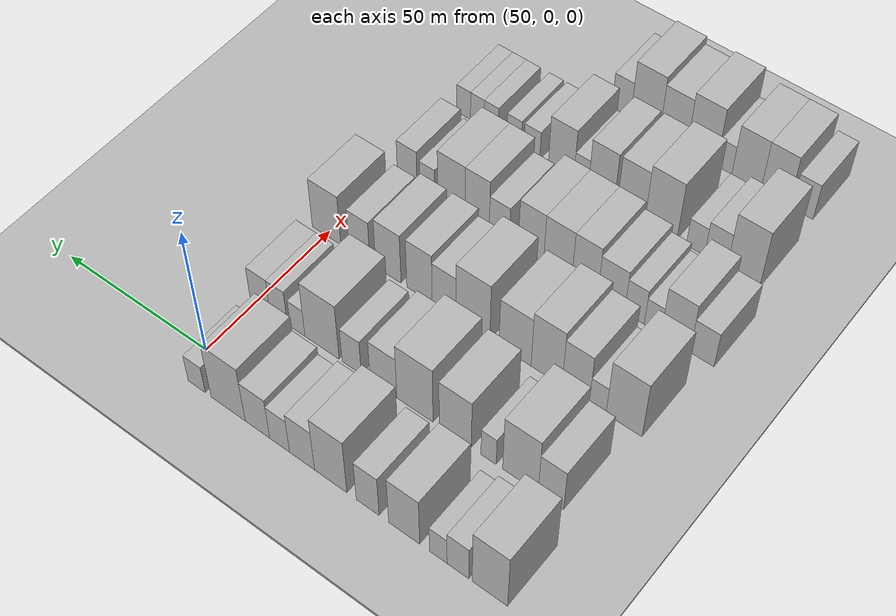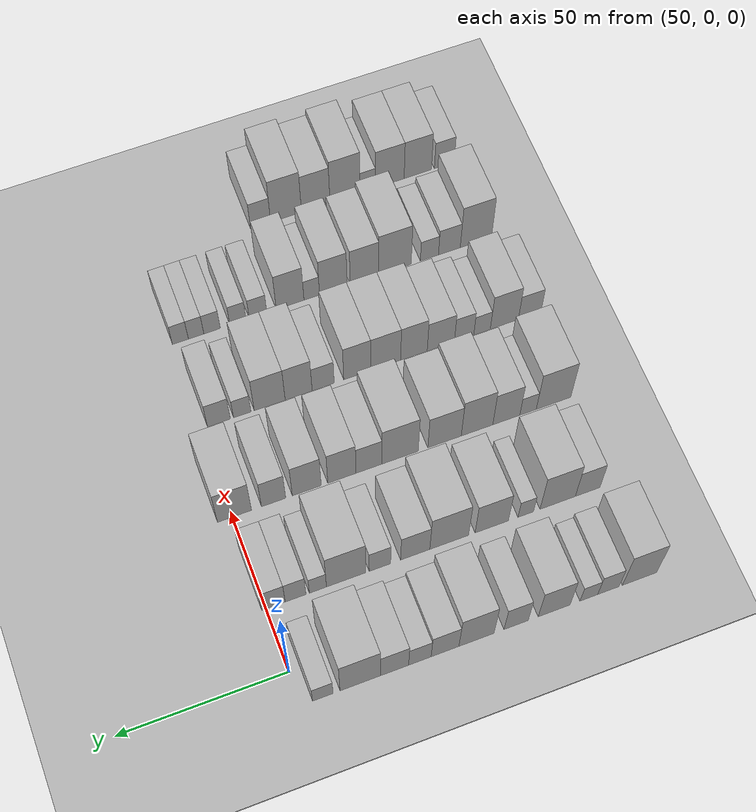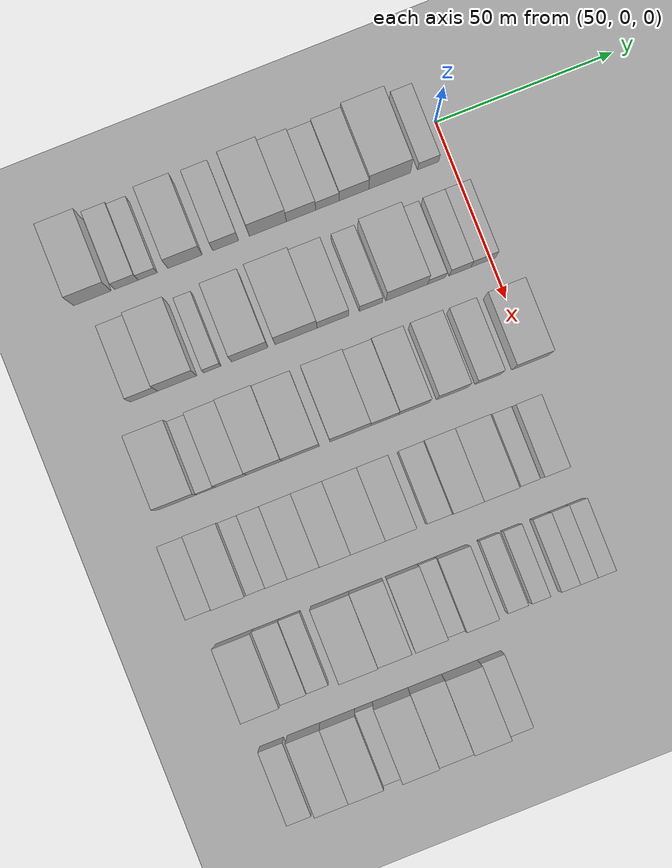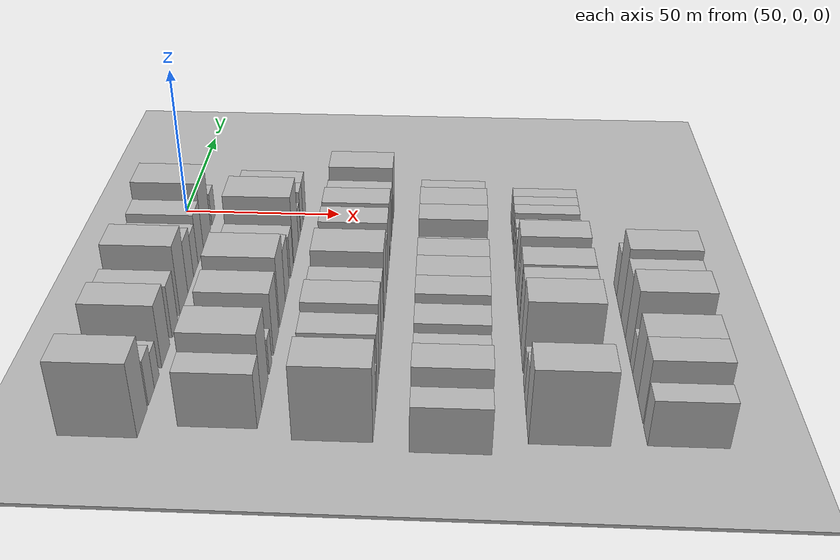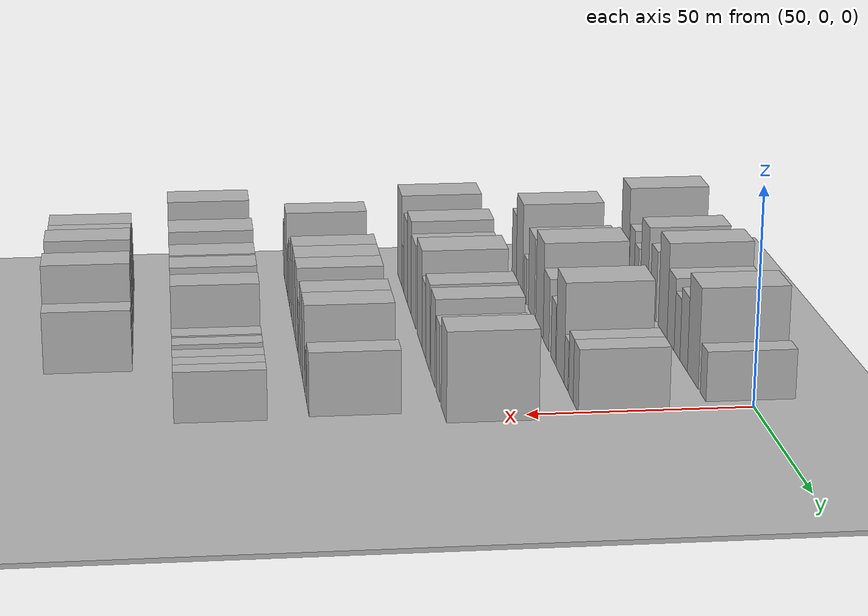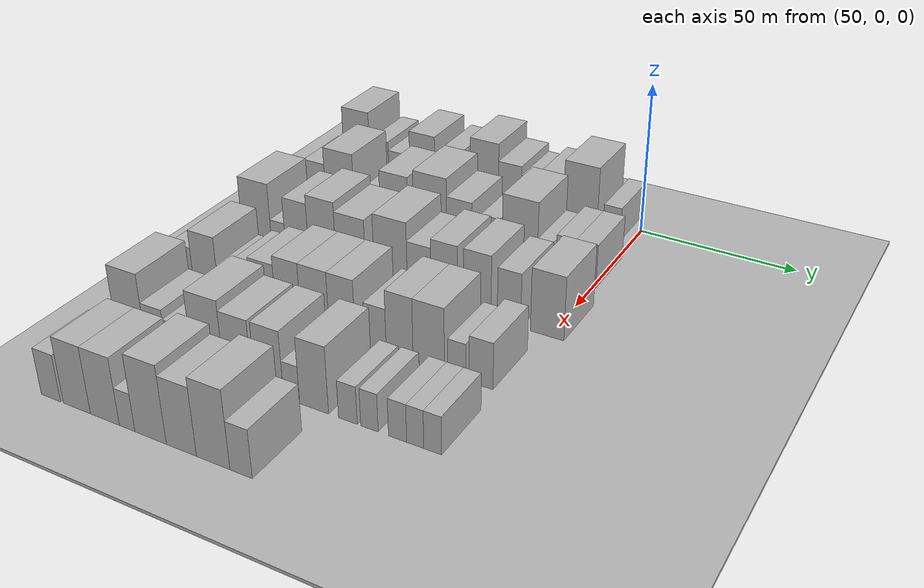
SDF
<sdf version="1.6">
 <world name="default">
  <include><name>ground_plane_1</name><uri>model://HANNAS_ground_plane</uri></include>
  <include>
   <name>ground_plane_2</name>
   <uri>model://HANNAS_ground_plane</uri>
   <pose>100 0 0  0 0 0</pose>
  </include>
  <model name="building_44">
   <static>1</static>
   <pose>50.0000 -100.7540 0 0.000000 0.000000 0.000000</pose>
   <link name="link">
    <pose>0 0 12.00 0 0 0</pose>
    <collision name="collision"><geometry><box><size>20.0000 10.5642 24.0000</size></box></geometry></collision>
    <visual name="visual">
     <cast_shadows>0</cast_shadows>
     <geometry><box><size>20.0000 10.5642 24.0000</size></box></geometry>
     <material>
      <script>
       <uri>model://HANNAS_wall/materials/scripts</uri>
       <uri>model://HANNAS_wall/materials/textures</uri>
       <name>vrc/HANNAS_wall</name>
      </script>
     </material>
    </visual>
   </link>
  </model>
  <model name="building_45">
   <static>1</static>
   <pose>50.0000 -91.1865 0 0.000000 0.000000 0.000000</pose>
   <link name="link">
    <pose>0 0 7.50 0 0 0</pose>
    <collision name="collision"><geometry><box><size>20.0000 6.5709 15.0000</size></box></geometry></collision>
    <visual name="visual">
     <cast_shadows>0</cast_shadows>
     <geometry><box><size>20.0000 6.5709 15.0000</size></box></geometry>
     <material>
      <script>
       <uri>model://HANNAS_wall/materials/scripts</uri>
       <uri>model://HANNAS_wall/materials/textures</uri>
       <name>vrc/HANNAS_wall</name>
      </script>
     </material>
    </visual>
   </link>
  </model>
  <model name="building_46">
   <static>1</static>
   <pose>50.0000 -85.2072 0 0.000000 0.000000 0.000000</pose>
   <link name="link">
    <pose>0 0 6.00 0 0 0</pose>
    <collision name="collision"><geometry><box><size>20.0000 5.3876 12.0000</size></box></geometry></collision>
    <visual name="visual">
     <cast_shadows>0</cast_shadows>
     <geometry><box><size>20.0000 5.3876 12.0000</size></box></geometry>
     <material>
      <script>
       <uri>model://HANNAS_wall/materials/scripts</uri>
       <uri>model://HANNAS_wall/materials/textures</uri>
       <name>vrc/HANNAS_wall</name>
      </script>
     </material>
    </visual>
   </link>
  </model>
  <model name="building_47">
   <static>1</static>
   <pose>50.0000 -74.6740 0 0.000000 0.000000 0.000000</pose>
   <link name="link">
    <pose>0 0 10.50 0 0 0</pose>
    <collision name="collision"><geometry><box><size>20.0000 9.6788 21.0000</size></box></geometry></collision>
    <visual name="visual">
     <cast_shadows>0</cast_shadows>
     <geometry><box><size>20.0000 9.6788 21.0000</size></box></geometry>
     <material>
      <script>
       <uri>model://HANNAS_wall/materials/scripts</uri>
       <uri>model://HANNAS_wall/materials/textures</uri>
       <name>vrc/HANNAS_wall</name>
      </script>
     </material>
    </visual>
   </link>
  </model>
  <model name="building_48">
   <static>1</static>
   <pose>50.0000 -63.1917 0 0.000000 0.000000 0.000000</pose>
   <link name="link">
    <pose>0 0 9.00 0 0 0</pose>
    <collision name="collision"><geometry><box><size>20.0000 7.2860 18.0000</size></box></geometry></collision>
    <visual name="visual">
     <cast_shadows>0</cast_shadows>
     <geometry><box><size>20.0000 7.2860 18.0000</size></box></geometry>
     <material>
      <script>
       <uri>model://HANNAS_wall/materials/scripts</uri>
       <uri>model://HANNAS_wall/materials/textures</uri>
       <name>vrc/HANNAS_wall</name>
      </script>
     </material>
    </visual>
   </link>
  </model>
  <model name="building_49">
   <static>1</static>
   <pose>50.0000 -51.3033 0 0.000000 0.000000 0.000000</pose>
   <link name="link">
    <pose>0 0 12.00 0 0 0</pose>
    <collision name="collision"><geometry><box><size>20.0000 10.4907 24.0000</size></box></geometry></collision>
    <visual name="visual">
     <cast_shadows>0</cast_shadows>
     <geometry><box><size>20.0000 10.4907 24.0000</size></box></geometry>
     <material>
      <script>
       <uri>model://HANNAS_wall/materials/scripts</uri>
       <uri>model://HANNAS_wall/materials/textures</uri>
       <name>vrc/HANNAS_wall</name>
      </script>
     </material>
    </visual>
   </link>
  </model>
  <model name="building_50">
   <static>1</static>
   <pose>50.0000 -41.9349 0 0.000000 0.000000 0.000000</pose>
   <link name="link">
    <pose>0 0 9.00 0 0 0</pose>
    <collision name="collision"><geometry><box><size>20.0000 8.2460 18.0000</size></box></geometry></collision>
    <visual name="visual">
     <cast_shadows>0</cast_shadows>
     <geometry><box><size>20.0000 8.2460 18.0000</size></box></geometry>
     <material>
      <script>
       <uri>model://HANNAS_wall/materials/scripts</uri>
       <uri>model://HANNAS_wall/materials/textures</uri>
       <name>vrc/HANNAS_wall</name>
      </script>
     </material>
    </visual>
   </link>
  </model>
  <model name="building_51">
   <static>1</static>
   <pose>50.0000 -34.5024 0 0.000000 0.000000 0.000000</pose>
   <link name="link">
    <pose>0 0 7.50 0 0 0</pose>
    <collision name="collision"><geometry><box><size>20.0000 6.6191 15.0000</size></box></geometry></collision>
    <visual name="visual">
     <cast_shadows>0</cast_shadows>
     <geometry><box><size>20.0000 6.6191 15.0000</size></box></geometry>
     <material>
      <script>
       <uri>model://HANNAS_wall/materials/scripts</uri>
       <uri>model://HANNAS_wall/materials/textures</uri>
       <name>vrc/HANNAS_wall</name>
      </script>
     </material>
    </visual>
   </link>
  </model>
  <model name="building_52">
   <static>1</static>
   <pose>50.0000 -27.0388 0 0.000000 0.000000 0.000000</pose>
   <link name="link">
    <pose>0 0 9.00 0 0 0</pose>
    <collision name="collision"><geometry><box><size>20.0000 8.3081 18.0000</size></box></geometry></collision>
    <visual name="visual">
     <cast_shadows>0</cast_shadows>
     <geometry><box><size>20.0000 8.3081 18.0000</size></box></geometry>
     <material>
      <script>
       <uri>model://HANNAS_wall/materials/scripts</uri>
       <uri>model://HANNAS_wall/materials/textures</uri>
       <name>vrc/HANNAS_wall</name>
      </script>
     </material>
    </visual>
   </link>
  </model>
  <model name="building_53">
   <static>1</static>
   <pose>50.0000 -16.9919 0 0.000000 0.000000 0.000000</pose>
   <link name="link">
    <pose>0 0 12.00 0 0 0</pose>
    <collision name="collision"><geometry><box><size>20.0000 11.7858 24.0000</size></box></geometry></collision>
    <visual name="visual">
     <cast_shadows>0</cast_shadows>
     <geometry><box><size>20.0000 11.7858 24.0000</size></box></geometry>
     <material>
      <script>
       <uri>model://HANNAS_wall/materials/scripts</uri>
       <uri>model://HANNAS_wall/materials/textures</uri>
       <name>vrc/HANNAS_wall</name>
      </script>
     </material>
    </visual>
   </link>
  </model>
  <model name="building_54">
   <static>1</static>
   <pose>50.0000 -6.1153 0 0.000000 0.000000 0.000000</pose>
   <link name="link">
    <pose>0 0 6.00 0 0 0</pose>
    <collision name="collision"><geometry><box><size>20.0000 5.9674 12.0000</size></box></geometry></collision>
    <visual name="visual">
     <cast_shadows>0</cast_shadows>
     <geometry><box><size>20.0000 5.9674 12.0000</size></box></geometry>
     <material>
      <script>
       <uri>model://HANNAS_wall/materials/scripts</uri>
       <uri>model://HANNAS_wall/materials/textures</uri>
       <name>vrc/HANNAS_wall</name>
      </script>
     </material>
    </visual>
   </link>
  </model>
  <model name="building_152">
   <static>1</static>
   <pose>79.0000 -97.6126 0 0.000000 0.000000 0.000000</pose>
   <link name="link">
    <pose>0 0 9.00 0 0 0</pose>
    <collision name="collision"><geometry><box><size>20.0000 7.7142 18.0000</size></box></geometry></collision>
    <visual name="visual">
     <cast_shadows>0</cast_shadows>
     <geometry><box><size>20.0000 7.7142 18.0000</size></box></geometry>
     <material>
      <script>
       <uri>model://HANNAS_wall/materials/scripts</uri>
       <uri>model://HANNAS_wall/materials/textures</uri>
       <name>vrc/HANNAS_wall</name>
      </script>
     </material>
    </visual>
   </link>
  </model>
  <model name="building_153">
   <static>1</static>
   <pose>79.0000 -88.2612 0 0.000000 0.000000 0.000000</pose>
   <link name="link">
    <pose>0 0 12.00 0 0 0</pose>
    <collision name="collision"><geometry><box><size>20.0000 10.9885 24.0000</size></box></geometry></collision>
    <visual name="visual">
     <cast_shadows>0</cast_shadows>
     <geometry><box><size>20.0000 10.9885 24.0000</size></box></geometry>
     <material>
      <script>
       <uri>model://HANNAS_wall/materials/scripts</uri>
       <uri>model://HANNAS_wall/materials/textures</uri>
       <name>vrc/HANNAS_wall</name>
      </script>
     </material>
    </visual>
   </link>
  </model>
  <model name="building_154">
   <static>1</static>
   <pose>79.0000 -78.3634 0 0.000000 0.000000 0.000000</pose>
   <link name="link">
    <pose>0 0 6.00 0 0 0</pose>
    <collision name="collision"><geometry><box><size>20.0000 4.8071 12.0000</size></box></geometry></collision>
    <visual name="visual">
     <cast_shadows>0</cast_shadows>
     <geometry><box><size>20.0000 4.8071 12.0000</size></box></geometry>
     <material>
      <script>
       <uri>model://HANNAS_wall/materials/scripts</uri>
       <uri>model://HANNAS_wall/materials/textures</uri>
       <name>vrc/HANNAS_wall</name>
      </script>
     </material>
    </visual>
   </link>
  </model>
  <model name="building_155">
   <static>1</static>
   <pose>79.0000 -67.8437 0 0.000000 0.000000 0.000000</pose>
   <link name="link">
    <pose>0 0 10.50 0 0 0</pose>
    <collision name="collision"><geometry><box><size>20.0000 10.2322 21.0000</size></box></geometry></collision>
    <visual name="visual">
     <cast_shadows>0</cast_shadows>
     <geometry><box><size>20.0000 10.2322 21.0000</size></box></geometry>
     <material>
      <script>
       <uri>model://HANNAS_wall/materials/scripts</uri>
       <uri>model://HANNAS_wall/materials/textures</uri>
       <name>vrc/HANNAS_wall</name>
      </script>
     </material>
    </visual>
   </link>
  </model>
  <model name="building_156">
   <static>1</static>
   <pose>79.0000 -54.8177 0 0.000000 0.000000 0.000000</pose>
   <link name="link">
    <pose>0 0 12.00 0 0 0</pose>
    <collision name="collision"><geometry><box><size>20.0000 11.8199 24.0000</size></box></geometry></collision>
    <visual name="visual">
     <cast_shadows>0</cast_shadows>
     <geometry><box><size>20.0000 11.8199 24.0000</size></box></geometry>
     <material>
      <script>
       <uri>model://HANNAS_wall/materials/scripts</uri>
       <uri>model://HANNAS_wall/materials/textures</uri>
       <name>vrc/HANNAS_wall</name>
      </script>
     </material>
    </visual>
   </link>
  </model>
  <model name="building_157">
   <static>1</static>
   <pose>79.0000 -44.4747 0 0.000000 0.000000 0.000000</pose>
   <link name="link">
    <pose>0 0 9.00 0 0 0</pose>
    <collision name="collision"><geometry><box><size>20.0000 8.8660 18.0000</size></box></geometry></collision>
    <visual name="visual">
     <cast_shadows>0</cast_shadows>
     <geometry><box><size>20.0000 8.8660 18.0000</size></box></geometry>
     <material>
      <script>
       <uri>model://HANNAS_wall/materials/scripts</uri>
       <uri>model://HANNAS_wall/materials/textures</uri>
       <name>vrc/HANNAS_wall</name>
      </script>
     </material>
    </visual>
   </link>
  </model>
  <model name="building_158">
   <static>1</static>
   <pose>79.0000 -33.8122 0 0.000000 0.000000 0.000000</pose>
   <link name="link">
    <pose>0 0 7.50 0 0 0</pose>
    <collision name="collision"><geometry><box><size>20.0000 6.4590 15.0000</size></box></geometry></collision>
    <visual name="visual">
     <cast_shadows>0</cast_shadows>
     <geometry><box><size>20.0000 6.4590 15.0000</size></box></geometry>
     <material>
      <script>
       <uri>model://HANNAS_wall/materials/scripts</uri>
       <uri>model://HANNAS_wall/materials/textures</uri>
       <name>vrc/HANNAS_wall</name>
      </script>
     </material>
    </visual>
   </link>
  </model>
  <model name="building_159">
   <static>1</static>
   <pose>79.0000 -23.6908 0 0.000000 0.000000 0.000000</pose>
   <link name="link">
    <pose>0 0 12.00 0 0 0</pose>
    <collision name="collision"><geometry><box><size>20.0000 11.7838 24.0000</size></box></geometry></collision>
    <visual name="visual">
     <cast_shadows>0</cast_shadows>
     <geometry><box><size>20.0000 11.7838 24.0000</size></box></geometry>
     <material>
      <script>
       <uri>model://HANNAS_wall/materials/scripts</uri>
       <uri>model://HANNAS_wall/materials/textures</uri>
       <name>vrc/HANNAS_wall</name>
      </script>
     </material>
    </visual>
   </link>
  </model>
  <model name="building_160">
   <static>1</static>
   <pose>79.0000 -15.2521 0 0.000000 0.000000 0.000000</pose>
   <link name="link">
    <pose>0 0 6.00 0 0 0</pose>
    <collision name="collision"><geometry><box><size>20.0000 5.0935 12.0000</size></box></geometry></collision>
    <visual name="visual">
     <cast_shadows>0</cast_shadows>
     <geometry><box><size>20.0000 5.0935 12.0000</size></box></geometry>
     <material>
      <script>
       <uri>model://HANNAS_wall/materials/scripts</uri>
       <uri>model://HANNAS_wall/materials/textures</uri>
       <name>vrc/HANNAS_wall</name>
      </script>
     </material>
    </visual>
   </link>
  </model>
  <model name="building_161">
   <static>1</static>
   <pose>79.0000 -8.6338 0 0.000000 0.000000 0.000000</pose>
   <link name="link">
    <pose>0 0 7.50 0 0 0</pose>
    <collision name="collision"><geometry><box><size>20.0000 6.1432 15.0000</size></box></geometry></collision>
    <visual name="visual">
     <cast_shadows>0</cast_shadows>
     <geometry><box><size>20.0000 6.1432 15.0000</size></box></geometry>
     <material>
      <script>
       <uri>model://HANNAS_wall/materials/scripts</uri>
       <uri>model://HANNAS_wall/materials/textures</uri>
       <name>vrc/HANNAS_wall</name>
      </script>
     </material>
    </visual>
   </link>
  </model>
  <model name="building_162">
   <static>1</static>
   <pose>79.0000 -2.0818 0 0.000000 0.000000 0.000000</pose>
   <link name="link">
    <pose>0 0 7.50 0 0 0</pose>
    <collision name="collision"><geometry><box><size>20.0000 6.9608 15.0000</size></box></geometry></collision>
    <visual name="visual">
     <cast_shadows>0</cast_shadows>
     <geometry><box><size>20.0000 6.9608 15.0000</size></box></geometry>
     <material>
      <script>
       <uri>model://HANNAS_wall/materials/scripts</uri>
       <uri>model://HANNAS_wall/materials/textures</uri>
       <name>vrc/HANNAS_wall</name>
      </script>
     </material>
    </visual>
   </link>
  </model>
  <model name="building_266">
   <static>1</static>
   <pose>108.0000 -99.4564 0 0.000000 0.000000 0.000000</pose>
   <link name="link">
    <pose>0 0 12.00 0 0 0</pose>
    <collision name="collision"><geometry><box><size>20.0000 11.0423 24.0000</size></box></geometry></collision>
    <visual name="visual">
     <cast_shadows>0</cast_shadows>
     <geometry><box><size>20.0000 11.0423 24.0000</size></box></geometry>
     <material>
      <script>
       <uri>model://HANNAS_wall/materials/scripts</uri>
       <uri>model://HANNAS_wall/materials/textures</uri>
       <name>vrc/HANNAS_wall</name>
      </script>
     </material>
    </visual>
   </link>
  </model>
  <model name="building_267">
   <static>1</static>
   <pose>108.0000 -91.3241 0 0.000000 0.000000 0.000000</pose>
   <link name="link">
    <pose>0 0 6.00 0 0 0</pose>
    <collision name="collision"><geometry><box><size>20.0000 5.2223 12.0000</size></box></geometry></collision>
    <visual name="visual">
     <cast_shadows>0</cast_shadows>
     <geometry><box><size>20.0000 5.2223 12.0000</size></box></geometry>
     <material>
      <script>
       <uri>model://HANNAS_wall/materials/scripts</uri>
       <uri>model://HANNAS_wall/materials/textures</uri>
       <name>vrc/HANNAS_wall</name>
      </script>
     </material>
    </visual>
   </link>
  </model>
  <model name="building_268">
   <static>1</static>
   <pose>108.0000 -84.4315 0 0.000000 0.000000 0.000000</pose>
   <link name="link">
    <pose>0 0 10.50 0 0 0</pose>
    <collision name="collision"><geometry><box><size>20.0000 8.5628 21.0000</size></box></geometry></collision>
    <visual name="visual">
     <cast_shadows>0</cast_shadows>
     <geometry><box><size>20.0000 8.5628 21.0000</size></box></geometry>
     <material>
      <script>
       <uri>model://HANNAS_wall/materials/scripts</uri>
       <uri>model://HANNAS_wall/materials/textures</uri>
       <name>vrc/HANNAS_wall</name>
      </script>
     </material>
    </visual>
   </link>
  </model>
  <model name="building_269">
   <static>1</static>
   <pose>108.0000 -75.1806 0 0.000000 0.000000 0.000000</pose>
   <link name="link">
    <pose>0 0 12.00 0 0 0</pose>
    <collision name="collision"><geometry><box><size>20.0000 9.9392 24.0000</size></box></geometry></collision>
    <visual name="visual">
     <cast_shadows>0</cast_shadows>
     <geometry><box><size>20.0000 9.9392 24.0000</size></box></geometry>
     <material>
      <script>
       <uri>model://HANNAS_wall/materials/scripts</uri>
       <uri>model://HANNAS_wall/materials/textures</uri>
       <name>vrc/HANNAS_wall</name>
      </script>
     </material>
    </visual>
   </link>
  </model>
  <model name="building_270">
   <static>1</static>
   <pose>108.0000 -64.9922 0 0.000000 0.000000 0.000000</pose>
   <link name="link">
    <pose>0 0 10.50 0 0 0</pose>
    <collision name="collision"><geometry><box><size>20.0000 10.4375 21.0000</size></box></geometry></collision>
    <visual name="visual">
     <cast_shadows>0</cast_shadows>
     <geometry><box><size>20.0000 10.4375 21.0000</size></box></geometry>
     <material>
      <script>
       <uri>model://HANNAS_wall/materials/scripts</uri>
       <uri>model://HANNAS_wall/materials/textures</uri>
       <name>vrc/HANNAS_wall</name>
      </script>
     </material>
    </visual>
   </link>
  </model>
  <model name="building_271">
   <static>1</static>
   <pose>108.0000 -51.1246 0 0.000000 0.000000 0.000000</pose>
   <link name="link">
    <pose>0 0 12.00 0 0 0</pose>
    <collision name="collision"><geometry><box><size>20.0000 11.2977 24.0000</size></box></geometry></collision>
    <visual name="visual">
     <cast_shadows>0</cast_shadows>
     <geometry><box><size>20.0000 11.2977 24.0000</size></box></geometry>
     <material>
      <script>
       <uri>model://HANNAS_wall/materials/scripts</uri>
       <uri>model://HANNAS_wall/materials/textures</uri>
       <name>vrc/HANNAS_wall</name>
      </script>
     </material>
    </visual>
   </link>
  </model>
  <model name="building_272">
   <static>1</static>
   <pose>108.0000 -41.4948 0 0.000000 0.000000 0.000000</pose>
   <link name="link">
    <pose>0 0 9.00 0 0 0</pose>
    <collision name="collision"><geometry><box><size>20.0000 7.9620 18.0000</size></box></geometry></collision>
    <visual name="visual">
     <cast_shadows>0</cast_shadows>
     <geometry><box><size>20.0000 7.9620 18.0000</size></box></geometry>
     <material>
      <script>
       <uri>model://HANNAS_wall/materials/scripts</uri>
       <uri>model://HANNAS_wall/materials/textures</uri>
       <name>vrc/HANNAS_wall</name>
      </script>
     </material>
    </visual>
   </link>
  </model>
  <model name="building_273">
   <static>1</static>
   <pose>108.0000 -33.1777 0 0.000000 0.000000 0.000000</pose>
   <link name="link">
    <pose>0 0 10.50 0 0 0</pose>
    <collision name="collision"><geometry><box><size>20.0000 8.6722 21.0000</size></box></geometry></collision>
    <visual name="visual">
     <cast_shadows>0</cast_shadows>
     <geometry><box><size>20.0000 8.6722 21.0000</size></box></geometry>
     <material>
      <script>
       <uri>model://HANNAS_wall/materials/scripts</uri>
       <uri>model://HANNAS_wall/materials/textures</uri>
       <name>vrc/HANNAS_wall</name>
      </script>
     </material>
    </visual>
   </link>
  </model>
  <model name="building_274">
   <static>1</static>
   <pose>108.0000 -22.4311 0 0.000000 0.000000 0.000000</pose>
   <link name="link">
    <pose>0 0 10.50 0 0 0</pose>
    <collision name="collision"><geometry><box><size>20.0000 8.8210 21.0000</size></box></geometry></collision>
    <visual name="visual">
     <cast_shadows>0</cast_shadows>
     <geometry><box><size>20.0000 8.8210 21.0000</size></box></geometry>
     <material>
      <script>
       <uri>model://HANNAS_wall/materials/scripts</uri>
       <uri>model://HANNAS_wall/materials/textures</uri>
       <name>vrc/HANNAS_wall</name>
      </script>
     </material>
    </visual>
   </link>
  </model>
  <model name="building_275">
   <static>1</static>
   <pose>108.0000 -12.3391 0 0.000000 0.000000 0.000000</pose>
   <link name="link">
    <pose>0 0 9.00 0 0 0</pose>
    <collision name="collision"><geometry><box><size>20.0000 7.3630 18.0000</size></box></geometry></collision>
    <visual name="visual">
     <cast_shadows>0</cast_shadows>
     <geometry><box><size>20.0000 7.3630 18.0000</size></box></geometry>
     <material>
      <script>
       <uri>model://HANNAS_wall/materials/scripts</uri>
       <uri>model://HANNAS_wall/materials/textures</uri>
       <name>vrc/HANNAS_wall</name>
      </script>
     </material>
    </visual>
   </link>
  </model>
  <model name="building_276">
   <static>1</static>
   <pose>108.0000 -0.5248 0 0.000000 0.000000 0.000000</pose>
   <link name="link">
    <pose>0 0 10.50 0 0 0</pose>
    <collision name="collision"><geometry><box><size>20.0000 10.2655 21.0000</size></box></geometry></collision>
    <visual name="visual">
     <cast_shadows>0</cast_shadows>
     <geometry><box><size>20.0000 10.2655 21.0000</size></box></geometry>
     <material>
      <script>
       <uri>model://HANNAS_wall/materials/scripts</uri>
       <uri>model://HANNAS_wall/materials/textures</uri>
       <name>vrc/HANNAS_wall</name>
      </script>
     </material>
    </visual>
   </link>
  </model>
  <model name="building_377">
   <static>1</static>
   <pose>137.0000 -104.1506 0 0.000000 0.000000 0.000000</pose>
   <link name="link">
    <pose>0 0 7.50 0 0 0</pose>
    <collision name="collision"><geometry><box><size>20.0000 7.4102 15.0000</size></box></geometry></collision>
    <visual name="visual">
     <cast_shadows>0</cast_shadows>
     <geometry><box><size>20.0000 7.4102 15.0000</size></box></geometry>
     <material>
      <script>
       <uri>model://HANNAS_wall/materials/scripts</uri>
       <uri>model://HANNAS_wall/materials/textures</uri>
       <name>vrc/HANNAS_wall</name>
      </script>
     </material>
    </visual>
   </link>
  </model>
  <model name="building_378">
   <static>1</static>
   <pose>137.0000 -95.8927 0 0.000000 0.000000 0.000000</pose>
   <link name="link">
    <pose>0 0 10.50 0 0 0</pose>
    <collision name="collision"><geometry><box><size>20.0000 9.1056 21.0000</size></box></geometry></collision>
    <visual name="visual">
     <cast_shadows>0</cast_shadows>
     <geometry><box><size>20.0000 9.1056 21.0000</size></box></geometry>
     <material>
      <script>
       <uri>model://HANNAS_wall/materials/scripts</uri>
       <uri>model://HANNAS_wall/materials/textures</uri>
       <name>vrc/HANNAS_wall</name>
      </script>
     </material>
    </visual>
   </link>
  </model>
  <model name="building_379">
   <static>1</static>
   <pose>137.0000 -88.6724 0 0.000000 0.000000 0.000000</pose>
   <link name="link">
    <pose>0 0 6.00 0 0 0</pose>
    <collision name="collision"><geometry><box><size>20.0000 5.3348 12.0000</size></box></geometry></collision>
    <visual name="visual">
     <cast_shadows>0</cast_shadows>
     <geometry><box><size>20.0000 5.3348 12.0000</size></box></geometry>
     <material>
      <script>
       <uri>model://HANNAS_wall/materials/scripts</uri>
       <uri>model://HANNAS_wall/materials/textures</uri>
       <name>vrc/HANNAS_wall</name>
      </script>
     </material>
    </visual>
   </link>
  </model>
  <model name="building_380">
   <static>1</static>
   <pose>137.0000 -82.8788 0 0.000000 0.000000 0.000000</pose>
   <link name="link">
    <pose>0 0 7.50 0 0 0</pose>
    <collision name="collision"><geometry><box><size>20.0000 6.2525 15.0000</size></box></geometry></collision>
    <visual name="visual">
     <cast_shadows>0</cast_shadows>
     <geometry><box><size>20.0000 6.2525 15.0000</size></box></geometry>
     <material>
      <script>
       <uri>model://HANNAS_wall/materials/scripts</uri>
       <uri>model://HANNAS_wall/materials/textures</uri>
       <name>vrc/HANNAS_wall</name>
      </script>
     </material>
    </visual>
   </link>
  </model>
  <model name="building_381">
   <static>1</static>
   <pose>137.0000 -75.3869 0 0.000000 0.000000 0.000000</pose>
   <link name="link">
    <pose>0 0 9.00 0 0 0</pose>
    <collision name="collision"><geometry><box><size>20.0000 8.7313 18.0000</size></box></geometry></collision>
    <visual name="visual">
     <cast_shadows>0</cast_shadows>
     <geometry><box><size>20.0000 8.7313 18.0000</size></box></geometry>
     <material>
      <script>
       <uri>model://HANNAS_wall/materials/scripts</uri>
       <uri>model://HANNAS_wall/materials/textures</uri>
       <name>vrc/HANNAS_wall</name>
      </script>
     </material>
    </visual>
   </link>
  </model>
  <model name="building_382">
   <static>1</static>
   <pose>137.0000 -66.7642 0 0.000000 0.000000 0.000000</pose>
   <link name="link">
    <pose>0 0 10.50 0 0 0</pose>
    <collision name="collision"><geometry><box><size>20.0000 8.5143 21.0000</size></box></geometry></collision>
    <visual name="visual">
     <cast_shadows>0</cast_shadows>
     <geometry><box><size>20.0000 8.5143 21.0000</size></box></geometry>
     <material>
      <script>
       <uri>model://HANNAS_wall/materials/scripts</uri>
       <uri>model://HANNAS_wall/materials/textures</uri>
       <name>vrc/HANNAS_wall</name>
      </script>
     </material>
    </visual>
   </link>
  </model>
  <model name="building_383">
   <static>1</static>
   <pose>137.0000 -57.7905 0 0.000000 0.000000 0.000000</pose>
   <link name="link">
    <pose>0 0 10.50 0 0 0</pose>
    <collision name="collision"><geometry><box><size>20.0000 9.4330 21.0000</size></box></geometry></collision>
    <visual name="visual">
     <cast_shadows>0</cast_shadows>
     <geometry><box><size>20.0000 9.4330 21.0000</size></box></geometry>
     <material>
      <script>
       <uri>model://HANNAS_wall/materials/scripts</uri>
       <uri>model://HANNAS_wall/materials/textures</uri>
       <name>vrc/HANNAS_wall</name>
      </script>
     </material>
    </visual>
   </link>
  </model>
  <model name="building_384">
   <static>1</static>
   <pose>137.0000 -48.7882 0 0.000000 0.000000 0.000000</pose>
   <link name="link">
    <pose>0 0 10.50 0 0 0</pose>
    <collision name="collision"><geometry><box><size>20.0000 8.5717 21.0000</size></box></geometry></collision>
    <visual name="visual">
     <cast_shadows>0</cast_shadows>
     <geometry><box><size>20.0000 8.5717 21.0000</size></box></geometry>
     <material>
      <script>
       <uri>model://HANNAS_wall/materials/scripts</uri>
       <uri>model://HANNAS_wall/materials/textures</uri>
       <name>vrc/HANNAS_wall</name>
      </script>
     </material>
    </visual>
   </link>
  </model>
  <model name="building_385">
   <static>1</static>
   <pose>137.0000 -38.0404 0 0.000000 0.000000 0.000000</pose>
   <link name="link">
    <pose>0 0 7.50 0 0 0</pose>
    <collision name="collision"><geometry><box><size>20.0000 6.9239 15.0000</size></box></geometry></collision>
    <visual name="visual">
     <cast_shadows>0</cast_shadows>
     <geometry><box><size>20.0000 6.9239 15.0000</size></box></geometry>
     <material>
      <script>
       <uri>model://HANNAS_wall/materials/scripts</uri>
       <uri>model://HANNAS_wall/materials/textures</uri>
       <name>vrc/HANNAS_wall</name>
      </script>
     </material>
    </visual>
   </link>
  </model>
  <model name="building_386">
   <static>1</static>
   <pose>137.0000 -30.3674 0 0.000000 0.000000 0.000000</pose>
   <link name="link">
    <pose>0 0 10.50 0 0 0</pose>
    <collision name="collision"><geometry><box><size>20.0000 8.4222 21.0000</size></box></geometry></collision>
    <visual name="visual">
     <cast_shadows>0</cast_shadows>
     <geometry><box><size>20.0000 8.4222 21.0000</size></box></geometry>
     <material>
      <script>
       <uri>model://HANNAS_wall/materials/scripts</uri>
       <uri>model://HANNAS_wall/materials/textures</uri>
       <name>vrc/HANNAS_wall</name>
      </script>
     </material>
    </visual>
   </link>
  </model>
  <model name="building_387">
   <static>1</static>
   <pose>137.0000 -21.3410 0 0.000000 0.000000 0.000000</pose>
   <link name="link">
    <pose>0 0 10.50 0 0 0</pose>
    <collision name="collision"><geometry><box><size>20.0000 9.6305 21.0000</size></box></geometry></collision>
    <visual name="visual">
     <cast_shadows>0</cast_shadows>
     <geometry><box><size>20.0000 9.6305 21.0000</size></box></geometry>
     <material>
      <script>
       <uri>model://HANNAS_wall/materials/scripts</uri>
       <uri>model://HANNAS_wall/materials/textures</uri>
       <name>vrc/HANNAS_wall</name>
      </script>
     </material>
    </visual>
   </link>
  </model>
  <model name="building_388">
   <static>1</static>
   <pose>137.0000 -12.8335 0 0.000000 0.000000 0.000000</pose>
   <link name="link">
    <pose>0 0 6.00 0 0 0</pose>
    <collision name="collision"><geometry><box><size>20.0000 5.3845 12.0000</size></box></geometry></collision>
    <visual name="visual">
     <cast_shadows>0</cast_shadows>
     <geometry><box><size>20.0000 5.3845 12.0000</size></box></geometry>
     <material>
      <script>
       <uri>model://HANNAS_wall/materials/scripts</uri>
       <uri>model://HANNAS_wall/materials/textures</uri>
       <name>vrc/HANNAS_wall</name>
      </script>
     </material>
    </visual>
   </link>
  </model>
  <model name="building_389">
   <static>1</static>
   <pose>137.0000 -5.6070 0 0.000000 0.000000 0.000000</pose>
   <link name="link">
    <pose>0 0 7.50 0 0 0</pose>
    <collision name="collision"><geometry><box><size>20.0000 7.0685 15.0000</size></box></geometry></collision>
    <visual name="visual">
     <cast_shadows>0</cast_shadows>
     <geometry><box><size>20.0000 7.0685 15.0000</size></box></geometry>
     <material>
      <script>
       <uri>model://HANNAS_wall/materials/scripts</uri>
       <uri>model://HANNAS_wall/materials/textures</uri>
       <name>vrc/HANNAS_wall</name>
      </script>
     </material>
    </visual>
   </link>
  </model>
  <model name="building_492">
   <static>1</static>
   <pose>166.0000 -98.5281 0 0.000000 0.000000 0.000000</pose>
   <link name="link">
    <pose>0 0 12.00 0 0 0</pose>
    <collision name="collision"><geometry><box><size>20.0000 10.3599 24.0000</size></box></geometry></collision>
    <visual name="visual">
     <cast_shadows>0</cast_shadows>
     <geometry><box><size>20.0000 10.3599 24.0000</size></box></geometry>
     <material>
      <script>
       <uri>model://HANNAS_wall/materials/scripts</uri>
       <uri>model://HANNAS_wall/materials/textures</uri>
       <name>vrc/HANNAS_wall</name>
      </script>
     </material>
    </visual>
   </link>
  </model>
  <model name="building_493">
   <static>1</static>
   <pose>166.0000 -89.7589 0 0.000000 0.000000 0.000000</pose>
   <link name="link">
    <pose>0 0 7.50 0 0 0</pose>
    <collision name="collision"><geometry><box><size>20.0000 7.1785 15.0000</size></box></geometry></collision>
    <visual name="visual">
     <cast_shadows>0</cast_shadows>
     <geometry><box><size>20.0000 7.1785 15.0000</size></box></geometry>
     <material>
      <script>
       <uri>model://HANNAS_wall/materials/scripts</uri>
       <uri>model://HANNAS_wall/materials/textures</uri>
       <name>vrc/HANNAS_wall</name>
      </script>
     </material>
    </visual>
   </link>
  </model>
  <model name="building_494">
   <static>1</static>
   <pose>166.0000 -83.1954 0 0.000000 0.000000 0.000000</pose>
   <link name="link">
    <pose>0 0 6.00 0 0 0</pose>
    <collision name="collision"><geometry><box><size>20.0000 5.9485 12.0000</size></box></geometry></collision>
    <visual name="visual">
     <cast_shadows>0</cast_shadows>
     <geometry><box><size>20.0000 5.9485 12.0000</size></box></geometry>
     <material>
      <script>
       <uri>model://HANNAS_wall/materials/scripts</uri>
       <uri>model://HANNAS_wall/materials/textures</uri>
       <name>vrc/HANNAS_wall</name>
      </script>
     </material>
    </visual>
   </link>
  </model>
  <model name="building_495">
   <static>1</static>
   <pose>166.0000 -71.9259 0 0.000000 0.000000 0.000000</pose>
   <link name="link">
    <pose>0 0 12.00 0 0 0</pose>
    <collision name="collision"><geometry><box><size>20.0000 10.5905 24.0000</size></box></geometry></collision>
    <visual name="visual">
     <cast_shadows>0</cast_shadows>
     <geometry><box><size>20.0000 10.5905 24.0000</size></box></geometry>
     <material>
      <script>
       <uri>model://HANNAS_wall/materials/scripts</uri>
       <uri>model://HANNAS_wall/materials/textures</uri>
       <name>vrc/HANNAS_wall</name>
      </script>
     </material>
    </visual>
   </link>
  </model>
  <model name="building_496">
   <static>1</static>
   <pose>166.0000 -61.9981 0 0.000000 0.000000 0.000000</pose>
   <link name="link">
    <pose>0 0 10.50 0 0 0</pose>
    <collision name="collision"><geometry><box><size>20.0000 9.2651 21.0000</size></box></geometry></collision>
    <visual name="visual">
     <cast_shadows>0</cast_shadows>
     <geometry><box><size>20.0000 9.2651 21.0000</size></box></geometry>
     <material>
      <script>
       <uri>model://HANNAS_wall/materials/scripts</uri>
       <uri>model://HANNAS_wall/materials/textures</uri>
       <name>vrc/HANNAS_wall</name>
      </script>
     </material>
    </visual>
   </link>
  </model>
  <model name="building_497">
   <static>1</static>
   <pose>166.0000 -51.9217 0 0.000000 0.000000 0.000000</pose>
   <link name="link">
    <pose>0 0 10.50 0 0 0</pose>
    <collision name="collision"><geometry><box><size>20.0000 8.8877 21.0000</size></box></geometry></collision>
    <visual name="visual">
     <cast_shadows>0</cast_shadows>
     <geometry><box><size>20.0000 8.8877 21.0000</size></box></geometry>
     <material>
      <script>
       <uri>model://HANNAS_wall/materials/scripts</uri>
       <uri>model://HANNAS_wall/materials/textures</uri>
       <name>vrc/HANNAS_wall</name>
      </script>
     </material>
    </visual>
   </link>
  </model>
  <model name="building_498">
   <static>1</static>
   <pose>166.0000 -44.9785 0 0.000000 0.000000 0.000000</pose>
   <link name="link">
    <pose>0 0 6.00 0 0 0</pose>
    <collision name="collision"><geometry><box><size>20.0000 4.9987 12.0000</size></box></geometry></collision>
    <visual name="visual">
     <cast_shadows>0</cast_shadows>
     <geometry><box><size>20.0000 4.9987 12.0000</size></box></geometry>
     <material>
      <script>
       <uri>model://HANNAS_wall/materials/scripts</uri>
       <uri>model://HANNAS_wall/materials/textures</uri>
       <name>vrc/HANNAS_wall</name>
      </script>
     </material>
    </visual>
   </link>
  </model>
  <model name="building_499">
   <static>1</static>
   <pose>166.0000 -38.0386 0 0.000000 0.000000 0.000000</pose>
   <link name="link">
    <pose>0 0 10.50 0 0 0</pose>
    <collision name="collision"><geometry><box><size>20.0000 8.8812 21.0000</size></box></geometry></collision>
    <visual name="visual">
     <cast_shadows>0</cast_shadows>
     <geometry><box><size>20.0000 8.8812 21.0000</size></box></geometry>
     <material>
      <script>
       <uri>model://HANNAS_wall/materials/scripts</uri>
       <uri>model://HANNAS_wall/materials/textures</uri>
       <name>vrc/HANNAS_wall</name>
      </script>
     </material>
    </visual>
   </link>
  </model>
  <model name="building_500">
   <static>1</static>
   <pose>166.0000 -27.7884 0 0.000000 0.000000 0.000000</pose>
   <link name="link">
    <pose>0 0 6.00 0 0 0</pose>
    <collision name="collision"><geometry><box><size>20.0000 5.6192 12.0000</size></box></geometry></collision>
    <visual name="visual">
     <cast_shadows>0</cast_shadows>
     <geometry><box><size>20.0000 5.6192 12.0000</size></box></geometry>
     <material>
      <script>
       <uri>model://HANNAS_wall/materials/scripts</uri>
       <uri>model://HANNAS_wall/materials/textures</uri>
       <name>vrc/HANNAS_wall</name>
      </script>
     </material>
    </visual>
   </link>
  </model>
  <model name="building_501">
   <static>1</static>
   <pose>166.0000 -21.4084 0 0.000000 0.000000 0.000000</pose>
   <link name="link">
    <pose>0 0 6.00 0 0 0</pose>
    <collision name="collision"><geometry><box><size>20.0000 5.1408 12.0000</size></box></geometry></collision>
    <visual name="visual">
     <cast_shadows>0</cast_shadows>
     <geometry><box><size>20.0000 5.1408 12.0000</size></box></geometry>
     <material>
      <script>
       <uri>model://HANNAS_wall/materials/scripts</uri>
       <uri>model://HANNAS_wall/materials/textures</uri>
       <name>vrc/HANNAS_wall</name>
      </script>
     </material>
    </visual>
   </link>
  </model>
  <model name="building_502">
   <static>1</static>
   <pose>166.0000 -13.2376 0 0.000000 0.000000 0.000000</pose>
   <link name="link">
    <pose>0 0 6.00 0 0 0</pose>
    <collision name="collision"><geometry><box><size>20.0000 5.2008 12.0000</size></box></geometry></collision>
    <visual name="visual">
     <cast_shadows>0</cast_shadows>
     <geometry><box><size>20.0000 5.2008 12.0000</size></box></geometry>
     <material>
      <script>
       <uri>model://HANNAS_wall/materials/scripts</uri>
       <uri>model://HANNAS_wall/materials/textures</uri>
       <name>vrc/HANNAS_wall</name>
      </script>
     </material>
    </visual>
   </link>
  </model>
  <model name="building_503">
   <static>1</static>
   <pose>166.0000 -8.2053 0 0.000000 0.000000 0.000000</pose>
   <link name="link">
    <pose>0 0 6.00 0 0 0</pose>
    <collision name="collision"><geometry><box><size>20.0000 4.8637 12.0000</size></box></geometry></collision>
    <visual name="visual">
     <cast_shadows>0</cast_shadows>
     <geometry><box><size>20.0000 4.8637 12.0000</size></box></geometry>
     <material>
      <script>
       <uri>model://HANNAS_wall/materials/scripts</uri>
       <uri>model://HANNAS_wall/materials/textures</uri>
       <name>vrc/HANNAS_wall</name>
      </script>
     </material>
    </visual>
   </link>
  </model>
  <model name="building_504">
   <static>1</static>
   <pose>166.0000 -3.2700 0 0.000000 0.000000 0.000000</pose>
   <link name="link">
    <pose>0 0 6.00 0 0 0</pose>
    <collision name="collision"><geometry><box><size>20.0000 5.0069 12.0000</size></box></geometry></collision>
    <visual name="visual">
     <cast_shadows>0</cast_shadows>
     <geometry><box><size>20.0000 5.0069 12.0000</size></box></geometry>
     <material>
      <script>
       <uri>model://HANNAS_wall/materials/scripts</uri>
       <uri>model://HANNAS_wall/materials/textures</uri>
       <name>vrc/HANNAS_wall</name>
      </script>
     </material>
    </visual>
   </link>
  </model>
  <model name="building_608">
   <static>1</static>
   <pose>195.0000 -99.6846 0 0.000000 0.000000 0.000000</pose>
   <link name="link">
    <pose>0 0 7.50 0 0 0</pose>
    <collision name="collision"><geometry><box><size>20.0000 6.7014 15.0000</size></box></geometry></collision>
    <visual name="visual">
     <cast_shadows>0</cast_shadows>
     <geometry><box><size>20.0000 6.7014 15.0000</size></box></geometry>
     <material>
      <script>
       <uri>model://HANNAS_wall/materials/scripts</uri>
       <uri>model://HANNAS_wall/materials/textures</uri>
       <name>vrc/HANNAS_wall</name>
      </script>
     </material>
    </visual>
   </link>
  </model>
  <model name="building_609">
   <static>1</static>
   <pose>195.0000 -90.7495 0 0.000000 0.000000 0.000000</pose>
   <link name="link">
    <pose>0 0 10.50 0 0 0</pose>
    <collision name="collision"><geometry><box><size>20.0000 9.1689 21.0000</size></box></geometry></collision>
    <visual name="visual">
     <cast_shadows>0</cast_shadows>
     <geometry><box><size>20.0000 9.1689 21.0000</size></box></geometry>
     <material>
      <script>
       <uri>model://HANNAS_wall/materials/scripts</uri>
       <uri>model://HANNAS_wall/materials/textures</uri>
       <name>vrc/HANNAS_wall</name>
      </script>
     </material>
    </visual>
   </link>
  </model>
  <model name="building_610">
   <static>1</static>
   <pose>195.0000 -81.3643 0 0.000000 0.000000 0.000000</pose>
   <link name="link">
    <pose>0 0 10.50 0 0 0</pose>
    <collision name="collision"><geometry><box><size>20.0000 9.6015 21.0000</size></box></geometry></collision>
    <visual name="visual">
     <cast_shadows>0</cast_shadows>
     <geometry><box><size>20.0000 9.6015 21.0000</size></box></geometry>
     <material>
      <script>
       <uri>model://HANNAS_wall/materials/scripts</uri>
       <uri>model://HANNAS_wall/materials/textures</uri>
       <name>vrc/HANNAS_wall</name>
      </script>
     </material>
    </visual>
   </link>
  </model>
  <model name="building_611">
   <static>1</static>
   <pose>195.0000 -74.0321 0 0.000000 0.000000 0.000000</pose>
   <link name="link">
    <pose>0 0 6.00 0 0 0</pose>
    <collision name="collision"><geometry><box><size>20.0000 5.0630 12.0000</size></box></geometry></collision>
    <visual name="visual">
     <cast_shadows>0</cast_shadows>
     <geometry><box><size>20.0000 5.0630 12.0000</size></box></geometry>
     <material>
      <script>
       <uri>model://HANNAS_wall/materials/scripts</uri>
       <uri>model://HANNAS_wall/materials/textures</uri>
       <name>vrc/HANNAS_wall</name>
      </script>
     </material>
    </visual>
   </link>
  </model>
  <model name="building_612">
   <static>1</static>
   <pose>195.0000 -66.4953 0 0.000000 0.000000 0.000000</pose>
   <link name="link">
    <pose>0 0 12.00 0 0 0</pose>
    <collision name="collision"><geometry><box><size>20.0000 10.0106 24.0000</size></box></geometry></collision>
    <visual name="visual">
     <cast_shadows>0</cast_shadows>
     <geometry><box><size>20.0000 10.0106 24.0000</size></box></geometry>
     <material>
      <script>
       <uri>model://HANNAS_wall/materials/scripts</uri>
       <uri>model://HANNAS_wall/materials/textures</uri>
       <name>vrc/HANNAS_wall</name>
      </script>
     </material>
    </visual>
   </link>
  </model>
  <model name="building_613">
   <static>1</static>
   <pose>195.0000 -56.8030 0 0.000000 0.000000 0.000000</pose>
   <link name="link">
    <pose>0 0 10.50 0 0 0</pose>
    <collision name="collision"><geometry><box><size>20.0000 9.3740 21.0000</size></box></geometry></collision>
    <visual name="visual">
     <cast_shadows>0</cast_shadows>
     <geometry><box><size>20.0000 9.3740 21.0000</size></box></geometry>
     <material>
      <script>
       <uri>model://HANNAS_wall/materials/scripts</uri>
       <uri>model://HANNAS_wall/materials/textures</uri>
       <name>vrc/HANNAS_wall</name>
      </script>
     </material>
    </visual>
   </link>
  </model>
  <model name="building_614">
   <static>1</static>
   <pose>195.0000 -47.0674 0 0.000000 0.000000 0.000000</pose>
   <link name="link">
    <pose>0 0 12.00 0 0 0</pose>
    <collision name="collision"><geometry><box><size>20.0000 10.0973 24.0000</size></box></geometry></collision>
    <visual name="visual">
     <cast_shadows>0</cast_shadows>
     <geometry><box><size>20.0000 10.0973 24.0000</size></box></geometry>
     <material>
      <script>
       <uri>model://HANNAS_wall/materials/scripts</uri>
       <uri>model://HANNAS_wall/materials/textures</uri>
       <name>vrc/HANNAS_wall</name>
      </script>
     </material>
    </visual>
   </link>
  </model>
  <model name="building_615">
   <static>1</static>
   <pose>195.0000 -38.7299 0 0.000000 0.000000 0.000000</pose>
   <link name="link">
    <pose>0 0 7.50 0 0 0</pose>
    <collision name="collision"><geometry><box><size>20.0000 6.5777 15.0000</size></box></geometry></collision>
    <visual name="visual">
     <cast_shadows>0</cast_shadows>
     <geometry><box><size>20.0000 6.5777 15.0000</size></box></geometry>
     <material>
      <script>
       <uri>model://HANNAS_wall/materials/scripts</uri>
       <uri>model://HANNAS_wall/materials/textures</uri>
       <name>vrc/HANNAS_wall</name>
      </script>
     </material>
    </visual>
   </link>
  </model>
 </world>
</sdf>
